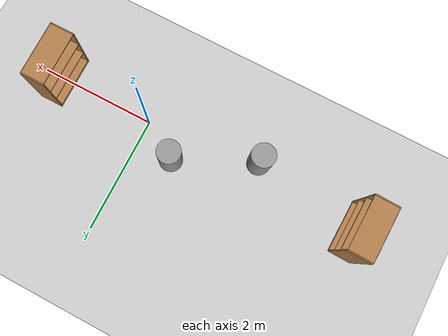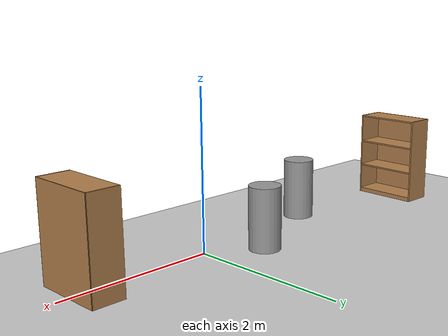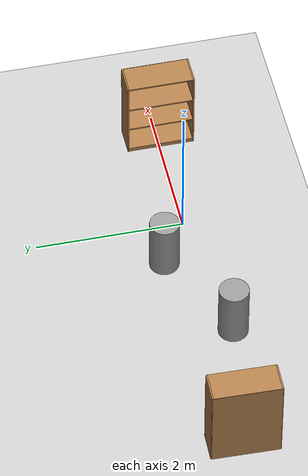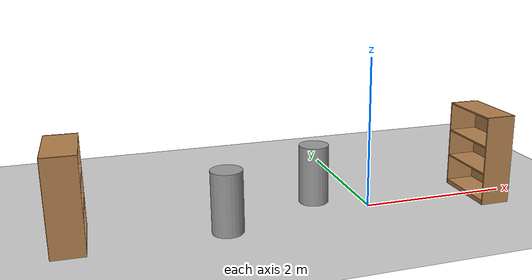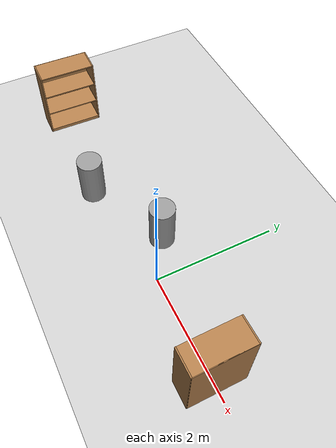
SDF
<sdf version="1.7">
 <world name="default">
  <light name="sun" type="directional">
   <pose>0 0 10 0 -0 0</pose>
   <diffuse>0.8 0.8 0.8 1</diffuse>
   <specular>0.2 0.2 0.2 1</specular>
   <attenuation>
    <range>1000</range>
    <constant>0.9</constant>
    <linear>0.01</linear>
    <quadratic>0.001</quadratic>
   </attenuation>
   <direction>-0.5 0.1 -0.9</direction>
   <spot><inner_angle>0</inner_angle><outer_angle>0</outer_angle><falloff>0</falloff></spot>
  </light>
  <model name="ground_plane">
   <static>1</static>
   <link name="link">
    <collision name="collision">
     <geometry><plane><normal>0 0 1</normal><size>100 100</size></plane></geometry>
     <surface>
      <contact><collide_bitmask>65535</collide_bitmask></contact>
      <friction><ode><mu>100</mu><mu2>50</mu2></ode></friction>
     </surface>
    </collision>
    <visual name="visual">
     <cast_shadows>0</cast_shadows>
     <geometry><plane><normal>0 0 1</normal><size>100 100</size></plane></geometry>
     <material>
      <script><uri>file://media/materials/scripts/gazebo.material</uri><name>Gazebo/Grey</name></script>
     </material>
    </visual>
   </link>
  </model>
  <gravity>0 0 -9.8</gravity>
  <magnetic_field>6e-06 2.3e-05 -4.2e-05</magnetic_field>
  <atmosphere type="adiabatic"/>
  <physics type="ode">
   <max_step_size>0.001</max_step_size>
   <real_time_factor>1</real_time_factor>
   <real_time_update_rate>1000</real_time_update_rate>
  </physics>
  <scene><ambient>0.4 0.4 0.4 1</ambient><background>0.7 0.7 0.7 1</background><shadows>1</shadows></scene>
  <spherical_coordinates>
   <surface_model>EARTH_WGS84</surface_model>
   <latitude_deg>0</latitude_deg>
   <longitude_deg>0</longitude_deg>
   <elevation>0</elevation>
   <heading_deg>0</heading_deg>
  </spherical_coordinates>
  <model name="bookshelf">
   <static>1</static>
   <link name="link">
    <inertial><mass>1</mass></inertial>
    <collision name="back">
     <pose>0 0.005 0.6 0 -0 0</pose>
     <geometry><box><size>0.9 0.01 1.2</size></box></geometry>
    </collision>
    <visual name="visual1">
     <pose>0 0.005 0.6 0 -0 0</pose>
     <geometry><box><size>0.9 0.01 1.2</size></box></geometry>
     <material>
      <script><uri>file://media/materials/scripts/gazebo.material</uri><name>Gazebo/Wood</name></script>
     </material>
    </visual>
    <collision name="left_side">
     <pose>0.45 -0.195 0.6 0 -0 0</pose>
     <geometry><box><size>0.02 0.4 1.2</size></box></geometry>
    </collision>
    <visual name="visual2">
     <pose>0.45 -0.195 0.6 0 -0 0</pose>
     <geometry><box><size>0.02 0.4 1.2</size></box></geometry>
     <material>
      <script><uri>file://media/materials/scripts/gazebo.material</uri><name>Gazebo/Wood</name></script>
     </material>
    </visual>
    <collision name="right_side">
     <pose>-0.45 -0.195 0.6 0 -0 0</pose>
     <geometry><box><size>0.02 0.4 1.2</size></box></geometry>
    </collision>
    <visual name="visual3">
     <pose>-0.45 -0.195 0.6 0 -0 0</pose>
     <geometry><box><size>0.02 0.4 1.2</size></box></geometry>
     <material>
      <script><uri>file://media/materials/scripts/gazebo.material</uri><name>Gazebo/Wood</name></script>
     </material>
    </visual>
    <collision name="bottom">
     <pose>0 -0.195 0.03 0 -0 0</pose>
     <geometry><box><size>0.88 0.4 0.06</size></box></geometry>
    </collision>
    <visual name="visual4">
     <pose>0 -0.195 0.03 0 -0 0</pose>
     <geometry><box><size>0.88 0.4 0.06</size></box></geometry>
     <material>
      <script><uri>file://media/materials/scripts/gazebo.material</uri><name>Gazebo/Wood</name></script>
     </material>
    </visual>
    <collision name="top">
     <pose>0 -0.195 1.19 0 -0 0</pose>
     <geometry><box><size>0.88 0.4 0.02</size></box></geometry>
    </collision>
    <visual name="visual5">
     <pose>0 -0.195 1.19 0 -0 0</pose>
     <geometry><box><size>0.88 0.4 0.02</size></box></geometry>
     <material>
      <script><uri>file://media/materials/scripts/gazebo.material</uri><name>Gazebo/Wood</name></script>
     </material>
    </visual>
    <collision name="low_shelf">
     <pose>0 -0.195 0.43 0 -0 0</pose>
     <geometry><box><size>0.88 0.4 0.02</size></box></geometry>
    </collision>
    <visual name="visual6">
     <pose>0 -0.195 0.43 0 -0 0</pose>
     <geometry><box><size>0.88 0.4 0.02</size></box></geometry>
     <material>
      <script><uri>file://media/materials/scripts/gazebo.material</uri><name>Gazebo/Wood</name></script>
     </material>
    </visual>
    <collision name="high_shelf">
     <pose>0 -0.195 0.8 0 -0 0</pose>
     <geometry><box><size>0.88 0.4 0.02</size></box></geometry>
    </collision>
    <visual name="visual7">
     <pose>0 -0.195 0.8 0 -0 0</pose>
     <geometry><box><size>0.88 0.4 0.02</size></box></geometry>
     <material>
      <script><uri>file://media/materials/scripts/gazebo.material</uri><name>Gazebo/Wood</name></script>
     </material>
    </visual>
   </link>
   <pose>1.84351 -0.019082 0.007661 0 0 -1.56585</pose>
  </model>
  <model name="bookshelf_0">
   <static>1</static>
   <link name="link">
    <inertial><mass>1</mass></inertial>
    <collision name="back">
     <pose>0 0.005 0.6 0 -0 0</pose>
     <geometry><box><size>0.9 0.01 1.2</size></box></geometry>
    </collision>
    <visual name="visual1">
     <pose>0 0.005 0.6 0 -0 0</pose>
     <geometry><box><size>0.9 0.01 1.2</size></box></geometry>
     <material>
      <script><uri>file://media/materials/scripts/gazebo.material</uri><name>Gazebo/Wood</name></script>
     </material>
    </visual>
    <collision name="left_side">
     <pose>0.45 -0.195 0.6 0 -0 0</pose>
     <geometry><box><size>0.02 0.4 1.2</size></box></geometry>
    </collision>
    <visual name="visual2">
     <pose>0.45 -0.195 0.6 0 -0 0</pose>
     <geometry><box><size>0.02 0.4 1.2</size></box></geometry>
     <material>
      <script><uri>file://media/materials/scripts/gazebo.material</uri><name>Gazebo/Wood</name></script>
     </material>
    </visual>
    <collision name="right_side">
     <pose>-0.45 -0.195 0.6 0 -0 0</pose>
     <geometry><box><size>0.02 0.4 1.2</size></box></geometry>
    </collision>
    <visual name="visual3">
     <pose>-0.45 -0.195 0.6 0 -0 0</pose>
     <geometry><box><size>0.02 0.4 1.2</size></box></geometry>
     <material>
      <script><uri>file://media/materials/scripts/gazebo.material</uri><name>Gazebo/Wood</name></script>
     </material>
    </visual>
    <collision name="bottom">
     <pose>0 -0.195 0.03 0 -0 0</pose>
     <geometry><box><size>0.88 0.4 0.06</size></box></geometry>
    </collision>
    <visual name="visual4">
     <pose>0 -0.195 0.03 0 -0 0</pose>
     <geometry><box><size>0.88 0.4 0.06</size></box></geometry>
     <material>
      <script><uri>file://media/materials/scripts/gazebo.material</uri><name>Gazebo/Wood</name></script>
     </material>
    </visual>
    <collision name="top">
     <pose>0 -0.195 1.19 0 -0 0</pose>
     <geometry><box><size>0.88 0.4 0.02</size></box></geometry>
    </collision>
    <visual name="visual5">
     <pose>0 -0.195 1.19 0 -0 0</pose>
     <geometry><box><size>0.88 0.4 0.02</size></box></geometry>
     <material>
      <script><uri>file://media/materials/scripts/gazebo.material</uri><name>Gazebo/Wood</name></script>
     </material>
    </visual>
    <collision name="low_shelf">
     <pose>0 -0.195 0.43 0 -0 0</pose>
     <geometry><box><size>0.88 0.4 0.02</size></box></geometry>
    </collision>
    <visual name="visual6">
     <pose>0 -0.195 0.43 0 -0 0</pose>
     <geometry><box><size>0.88 0.4 0.02</size></box></geometry>
     <material>
      <script><uri>file://media/materials/scripts/gazebo.material</uri><name>Gazebo/Wood</name></script>
     </material>
    </visual>
    <collision name="high_shelf">
     <pose>0 -0.195 0.8 0 -0 0</pose>
     <geometry><box><size>0.88 0.4 0.02</size></box></geometry>
    </collision>
    <visual name="visual7">
     <pose>0 -0.195 0.8 0 -0 0</pose>
     <geometry><box><size>0.88 0.4 0.02</size></box></geometry>
     <material>
      <script><uri>file://media/materials/scripts/gazebo.material</uri><name>Gazebo/Wood</name></script>
     </material>
    </visual>
   </link>
   <pose>-3.98761 0.078243 0 0 -0 1.54442</pose>
  </model>
  <model name="unit_cylinder">
   <link name="link">
    <inertial>
     <mass>1</mass>
     <inertia><ixx>0.145833</ixx><ixy>0</ixy><ixz>0</ixz><iyy>0.145833</iyy><iyz>0</iyz><izz>0.125</izz></inertia>
    </inertial>
    <visual name="visual">
     <geometry><cylinder><radius>0.2</radius><length>0.8</length></cylinder></geometry>
     <material>
      <script><name>Gazebo/Grey</name><uri>file://media/materials/scripts/gazebo.material</uri></script>
      <shader type="pixel"><normal_map>__default__</normal_map></shader>
      <ambient>0.3 0.3 0.3 1</ambient>
      <diffuse>0.7 0.7 0.7 1</diffuse>
      <specular>0.01 0.01 0.01 1</specular>
      <emissive>0 0 0 1</emissive>
     </material>
    </visual>
    <collision name="collision">
     <geometry><cylinder><radius>0.2</radius><length>0.8</length></cylinder></geometry>
     <surface>
      <friction>
       <ode><mu>1</mu><mu2>1</mu2><fdir1>0 0 0</fdir1><slip1>0</slip1><slip2>0</slip2></ode>
       <torsional>
        <coefficient>1</coefficient>
        <patch_radius>0</patch_radius>
        <surface_radius>0</surface_radius>
        <use_patch_radius>1</use_patch_radius>
        <ode><slip>0</slip></ode>
       </torsional>
      </friction>
      <bounce><restitution_coefficient>0</restitution_coefficient><threshold>1e+06</threshold></bounce>
      <contact>
       <collide_without_contact>0</collide_without_contact>
       <collide_without_contact_bitmask>1</collide_without_contact_bitmask>
       <collide_bitmask>1</collide_bitmask>
       <ode>
        <soft_cfm>0</soft_cfm>
        <soft_erp>0.2</soft_erp>
        <kp>1e+13</kp>
        <kd>1</kd>
        <max_vel>0.01</max_vel>
        <min_depth>0</min_depth>
       </ode>
       <bullet>
        <split_impulse>1</split_impulse>
        <split_impulse_penetration_threshold>-0.01</split_impulse_penetration_threshold>
        <soft_cfm>0</soft_cfm>
        <soft_erp>0.2</soft_erp>
        <kp>1e+13</kp>
        <kd>1</kd>
       </bullet>
      </contact>
     </surface>
    </collision>
   </link>
   <static>0</static>
   <pose>-1.95101 -0.232229 0.399991 -1e-06 -0 -1e-06</pose>
  </model>
  <model name="unit_cylinder_0">
   <link name="link">
    <inertial>
     <mass>1</mass>
     <inertia><ixx>0.145833</ixx><ixy>0</ixy><ixz>0</ixz><iyy>0.145833</iyy><iyz>0</iyz><izz>0.125</izz></inertia>
    </inertial>
    <visual name="visual">
     <geometry><cylinder><radius>0.2</radius><length>0.8</length></cylinder></geometry>
     <material>
      <script><name>Gazebo/Grey</name><uri>file://media/materials/scripts/gazebo.material</uri></script>
      <shader type="pixel"><normal_map>__default__</normal_map></shader>
      <ambient>0.3 0.3 0.3 1</ambient>
      <diffuse>0.7 0.7 0.7 1</diffuse>
      <specular>0.01 0.01 0.01 1</specular>
      <emissive>0 0 0 1</emissive>
     </material>
    </visual>
    <collision name="collision">
     <geometry><cylinder><radius>0.2</radius><length>0.8</length></cylinder></geometry>
     <surface>
      <friction>
       <ode><mu>1</mu><mu2>1</mu2><fdir1>0 0 0</fdir1><slip1>0</slip1><slip2>0</slip2></ode>
       <torsional>
        <coefficient>1</coefficient>
        <patch_radius>0</patch_radius>
        <surface_radius>0</surface_radius>
        <use_patch_radius>1</use_patch_radius>
        <ode><slip>0</slip></ode>
       </torsional>
      </friction>
      <bounce><restitution_coefficient>0</restitution_coefficient><threshold>1e+06</threshold></bounce>
      <contact>
       <collide_without_contact>0</collide_without_contact>
       <collide_without_contact_bitmask>1</collide_without_contact_bitmask>
       <collide_bitmask>1</collide_bitmask>
       <ode>
        <soft_cfm>0</soft_cfm>
        <soft_erp>0.2</soft_erp>
        <kp>1e+13</kp>
        <kd>1</kd>
        <max_vel>0.01</max_vel>
        <min_depth>0</min_depth>
       </ode>
       <bullet>
        <split_impulse>1</split_impulse>
        <split_impulse_penetration_threshold>-0.01</split_impulse_penetration_threshold>
        <soft_cfm>0</soft_cfm>
        <soft_erp>0.2</soft_erp>
        <kp>1e+13</kp>
        <kd>1</kd>
       </bullet>
      </contact>
     </surface>
    </collision>
   </link>
   <static>0</static>
   <pose>-0.631025 0.393678 0.399999 1e-06 -0 -1e-06</pose>
  </model>
 </world>
</sdf>
